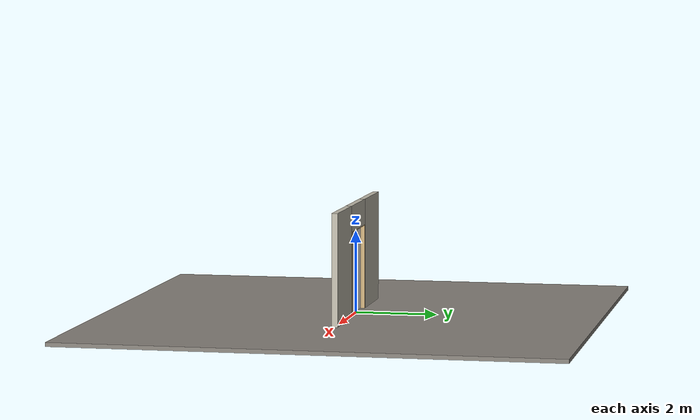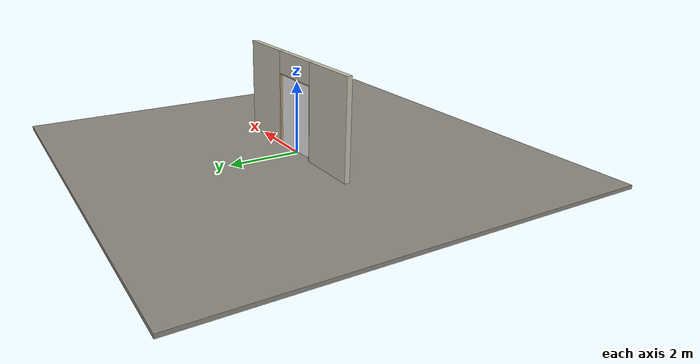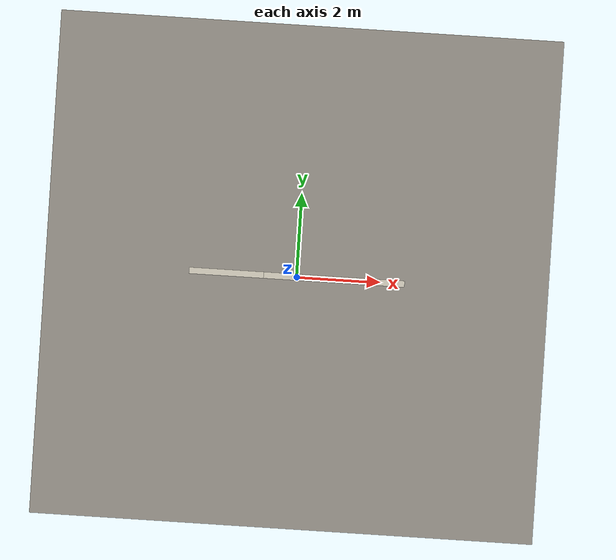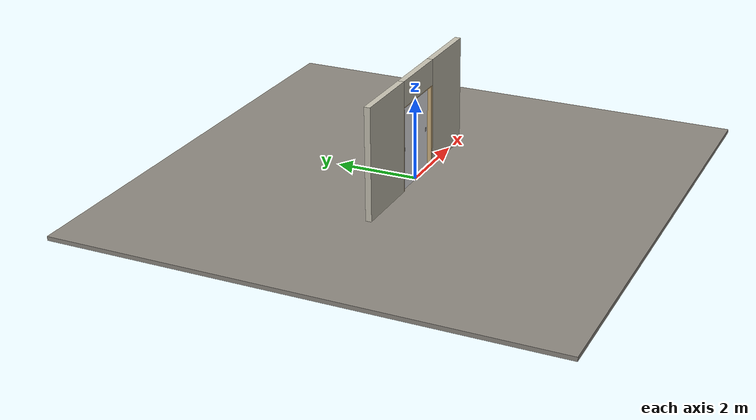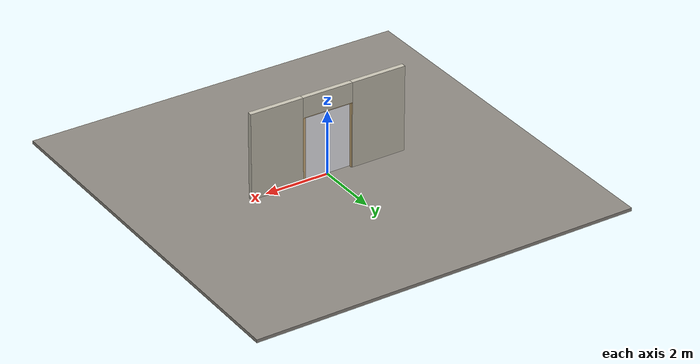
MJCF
<?xml version="1.0" ?>
<mujoco model="db0586_sliding_bypass_minimal">
  <compiler angle="radian" meshdir="../../hardware" texturedir="../../textures" autolimits="true" inertiafromgeom="false"/>
  <option timestep="0.002" integrator="implicitfast" cone="elliptic" impratio="10" noslip_iterations="3">
    <flag multiccd="enable"/>
  </option>
  <size memory="16M"/>
  <default>
    <geom condim="4" solref="0.005 1" solimp="0.95 0.99 0.001"/>
    <joint solreflimit="0.005 1" solimplimit="0.95 0.99 0.001"/>
    <tendon solreflimit="0.005 1"/>
    <equality solref="0.002 1"/>
  </default>
  <visual>
    <headlight ambient="0.4 0.4 0.4" diffuse="0.7 0.7 0.7" specular="0.2 0.2 0.2"/>
    <quality shadowsize="4096"/>
    <map znear="0.01" zfar="60"/>
  </visual>
  <asset>
    <material name="mat_floor" rgba="0.55 0.53 0.5 1" specular="0.2" shininess="0.15" reflectance="0"/>
    <material name="mat_wall" rgba="0.78 0.76 0.7 1" specular="0.2" shininess="0.1" reflectance="0"/>
    <material name="mat_frame" rgba="0.82 0.7 0.5 1" specular="0.2" shininess="0.45" reflectance="0"/>
    <material name="mat_track" rgba="0.8 0.81 0.83 1" specular="0.8" shininess="0.6" reflectance="0.4"/>
    <material name="mat_leaf_0" rgba="0.95 0.95 0.97 1" specular="0.8" shininess="1" reflectance="0.4"/>
    <material name="mat_glass_leaf" rgba="0.95 0.95 0.97 1" specular="0.8" shininess="1" reflectance="0.4"/>
    <material name="mat_patch" rgba="0.75 0.76 0.77 1" specular="0.8" shininess="0.65" reflectance="0.4"/>
    <material name="mat_roller" rgba="0.65 0.66 0.68 1" specular="0.74" shininess="0.5" reflectance="0.36"/>
    <material name="mat_op_nickel_satin" rgba="0.72 0.7 0.66 1" specular="0.8" shininess="0.65" reflectance="0.4"/>
    <material name="mat_leaf_1" rgba="0.95 0.95 0.97 1" specular="0.8" shininess="1" reflectance="0.4"/>
    <material name="mat_hook" rgba="0.75 0.76 0.77 1" specular="0.8" shininess="0.65" reflectance="0.4"/>
    <texture name="skybox" type="skybox" builtin="gradient" rgb1="0.6 0.7 0.85" rgb2="0.9 0.92 0.95" width="256" height="256"/>
  </asset>
  <worldbody>
    <light name="sun" pos="1.5 -2.5 4" dir="-0.3 0.5 -0.8" directional="true" diffuse="0.8 0.8 0.8" specular="0.3 0.3 0.3" castshadow="true"/>
    <light name="fill" pos="-1.5 2.5 3" dir="0.3 -0.5 -0.7" directional="true" diffuse="0.35 0.35 0.4" castshadow="false"/>
    <camera name="robot_view" pos="0 -2.54875 1.73965" xyaxes="1 0 0 0 0.26963 0.962964" fovy="52"/>
    <camera name="far_view" pos="0 2.54875 1.73965" xyaxes="-1 0 0 0 -0.26963 0.962964" fovy="52"/>
    <camera name="iso" pos="1.93705 -2.14095 2.14745" xyaxes="0.741536 0.670913 0 -0.242917 0.268487 0.932151" fovy="46"/>
    <camera name="detail_handle" pos="-0.479 -0.831 1.28" xyaxes="0.97561 0.219512 0 -0.070934 0.315262 0.94635" fovy="38"/>
    <geom name="floor" type="box" size="6 6 0.05" pos="0 0 -0.05" material="mat_floor" group="0" contype="1" conaffinity="1" friction="0.8 0.005 0.0001" density="2400"/>
    <geom name="wall_left" type="box" size="0.8645 0.0725 1.35" pos="-1.6355 0 1.35" material="mat_wall" group="0" contype="1" conaffinity="1" friction="0.6 0.005 0.0001" density="800"/>
    <geom name="wall_right" type="box" size="0.8345 0.0725 1.35" pos="1.6655 0 1.35" material="mat_wall" group="0" contype="1" conaffinity="1" friction="0.6 0.005 0.0001" density="800"/>
    <geom name="wall_header" type="box" size="0.801 0.0725 0.3145" pos="0.03 0 2.3855" material="mat_wall" group="0" contype="1" conaffinity="1" friction="0.6 0.005 0.0001" density="800"/>
    <geom name="jamb_l" type="box" size="0.0095 0.0725 1.026" pos="-0.7615 0 1.026" material="mat_frame" group="0" contype="1" conaffinity="1" friction="0.6 0.005 0.0001" density="300"/>
    <geom name="jamb_head" type="box" size="0.771 0.0725 0.0095" pos="0 0 2.0615" material="mat_frame" group="0" contype="1" conaffinity="1" friction="0.6 0.005 0.0001" density="300"/>
    <geom name="jamb_latch_0" type="box" size="0.0395 0.0725 1.026" pos="0.7915 0 1.026" material="mat_frame" group="0" contype="1" conaffinity="1" friction="0.6 0.005 0.0001" density="300"/>
    <site name="approach_point" pos="0 -1.5 0" quat="1 0 0 0" size="0.05" rgba="0.2 0.9 0.2 0.5" group="4"/>
    <site name="goal_point" pos="0 1.5 0" quat="1 0 0 0" size="0.05" rgba="0.2 0.9 0.2 0.5" group="4"/>
    <site name="door_plane_center" pos="0 0 1.026" quat="1 0 0 0" size="0.02" rgba="0.2 0.9 0.2 0.5" group="4"/>
    <body name="leaf_0" pos="-0.368 -0.028 0">
      <inertial pos="-0.000063 -0.000001 1.027994" mass="23.32576" quat="0.5 0.499997 0.500003 -0.5" diaginertia="1.12891674 8.024402586 9.153179277"/>
      <joint name="leaf_0_slide" type="slide" axis="1 0 0" limited="true" range="0 0.716" damping="3.171288" frictionloss="5.513478" armature="0.5"/>
      <geom name="leaf_0_glass" type="box" size="0.381 0.003 1.016" pos="0 0 1.028" material="mat_glass_leaf" group="0" contype="1" conaffinity="1" friction="0.4 0.005 0.0001" density="1"/>
      <geom name="leaf_0_pull_n" type="box" size="0.025 0.0005 0.05" pos="-0.291 -0.0035 1" material="mat_op_nickel_satin" group="1" contype="0" conaffinity="0" density="1000"/>
      <site name="leaf_0_pull_grip_n" pos="-0.291 -0.003 1" quat="1 0 0 0" size="0.012" rgba="0.2 0.9 0.2 0.5" group="4"/>
      <site name="leaf_0_edge_mid" pos="-0.381 0 1.028" quat="1 0 0 0" size="0.02" rgba="0.2 0.9 0.2 0.5" group="4"/>
    </body>
    <body name="leaf_1" pos="0.368 0.028 0">
      <inertial pos="0.000063 -0.000001 1.027994" mass="23.32576" quat="0.5 0.500003 0.499997 -0.5" diaginertia="1.12891674 8.024402586 9.153179277"/>
      <joint name="leaf_1_slide" type="slide" axis="-1 0 0" limited="true" range="0 0.716" damping="3.171288" frictionloss="5.513478" armature="0.5"/>
      <geom name="leaf_1_glass" type="box" size="0.381 0.003 1.016" pos="0 0 1.028" material="mat_glass_leaf" group="0" contype="1" conaffinity="1" friction="0.4 0.005 0.0001" density="1"/>
      <geom name="leaf_1_pull_n" type="box" size="0.025 0.0005 0.05" pos="0.291 -0.0035 1" material="mat_op_nickel_satin" group="1" contype="0" conaffinity="0" density="1000"/>
      <site name="leaf_1_pull_grip_n" pos="0.291 -0.003 1" quat="1 0 0 0" size="0.012" rgba="0.2 0.9 0.2 0.5" group="4"/>
      <site name="leaf_1_edge_mid" pos="0.381 0 1.028" quat="1 0 0 0" size="0.02" rgba="0.2 0.9 0.2 0.5" group="4"/>
    </body>
  </worldbody>
  <sensor>
    <jointpos name="leaf_0_slide_pos" joint="leaf_0_slide"/>
    <jointvel name="leaf_0_slide_vel" joint="leaf_0_slide"/>
    <jointpos name="leaf_1_slide_pos" joint="leaf_1_slide"/>
    <jointvel name="leaf_1_slide_vel" joint="leaf_1_slide"/>
  </sensor>
</mujoco>
